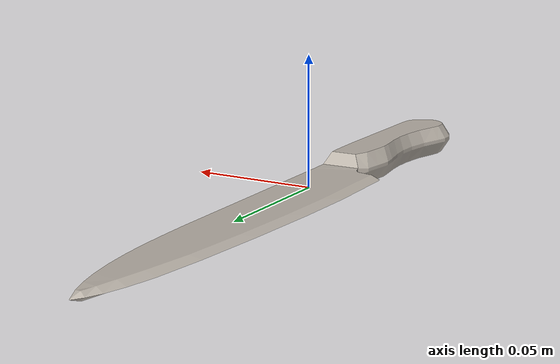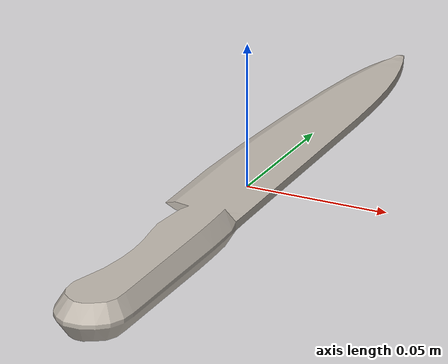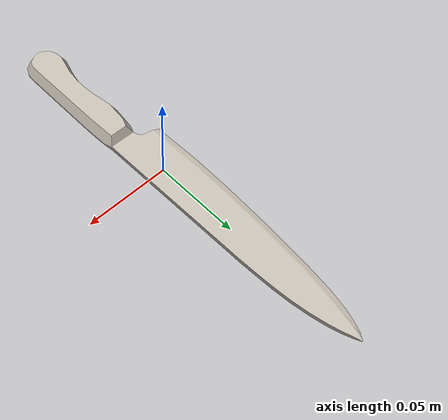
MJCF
<mujoco model="kitchen_knife_16">
    <compiler angle="radian" />
  <default>
    <default class="visual">
      <geom group="2" type="mesh" contype="0" conaffinity="0" />
    </default>
    <default class="collision">
      <geom group="3" type="mesh" solref="0.001 1" solimp="0.998 0.998 0.001" />
    </default>
    <default class="grasppoint">
        <site type="sphere" size="0.01" group="4" rgba="0 0 1 0.2" />
    </default>
  </default>

  <asset>
    <mesh file="visual/model_normalized_0.obj" name="model_normalized_0_vis" scale="0.195 0.195 0.195" refquat="0.6392169592876203 -0.6392169592876203 -0.3023271058954003 -0.3023271058954004" />
    <mesh file="collision/model_normalized_collision_22.obj" name="model_normalized_collision_22._coll" scale="0.195 0.195 0.195" refquat="0.6392169592876203 -0.6392169592876203 -0.3023271058954003 -0.3023271058954004" />
    <mesh file="collision/model_normalized_collision_23.obj" name="model_normalized_collision_23._coll" scale="0.195 0.195 0.195" refquat="0.6392169592876203 -0.6392169592876203 -0.3023271058954003 -0.3023271058954004" />
    <mesh file="collision/model_normalized_collision_21.obj" name="model_normalized_collision_21._coll" scale="0.195 0.195 0.195" refquat="0.6392169592876203 -0.6392169592876203 -0.3023271058954003 -0.3023271058954004" />
    <mesh file="collision/model_normalized_collision_20.obj" name="model_normalized_collision_20._coll" scale="0.195 0.195 0.195" refquat="0.6392169592876203 -0.6392169592876203 -0.3023271058954003 -0.3023271058954004" />
    <mesh file="collision/model_normalized_collision_24.obj" name="model_normalized_collision_24._coll" scale="0.195 0.195 0.195" refquat="0.6392169592876203 -0.6392169592876203 -0.3023271058954003 -0.3023271058954004" />
    <mesh file="collision/model_normalized_collision_30.obj" name="model_normalized_collision_30._coll" scale="0.195 0.195 0.195" refquat="0.6392169592876203 -0.6392169592876203 -0.3023271058954003 -0.3023271058954004" />
    <mesh file="collision/model_normalized_collision_18.obj" name="model_normalized_collision_18._coll" scale="0.195 0.195 0.195" refquat="0.6392169592876203 -0.6392169592876203 -0.3023271058954003 -0.3023271058954004" />
    <mesh file="collision/model_normalized_collision_19.obj" name="model_normalized_collision_19._coll" scale="0.195 0.195 0.195" refquat="0.6392169592876203 -0.6392169592876203 -0.3023271058954003 -0.3023271058954004" />
    <mesh file="collision/model_normalized_collision_31.obj" name="model_normalized_collision_31._coll" scale="0.195 0.195 0.195" refquat="0.6392169592876203 -0.6392169592876203 -0.3023271058954003 -0.3023271058954004" />
    <mesh file="collision/model_normalized_collision_25.obj" name="model_normalized_collision_25._coll" scale="0.195 0.195 0.195" refquat="0.6392169592876203 -0.6392169592876203 -0.3023271058954003 -0.3023271058954004" />
    <mesh file="collision/model_normalized_collision_27.obj" name="model_normalized_collision_27._coll" scale="0.195 0.195 0.195" refquat="0.6392169592876203 -0.6392169592876203 -0.3023271058954003 -0.3023271058954004" />
    <mesh file="collision/model_normalized_collision_26.obj" name="model_normalized_collision_26._coll" scale="0.195 0.195 0.195" refquat="0.6392169592876203 -0.6392169592876203 -0.3023271058954003 -0.3023271058954004" />
    <mesh file="collision/model_normalized_collision_9.obj" name="model_normalized_collision_9._coll" scale="0.195 0.195 0.195" refquat="0.6392169592876203 -0.6392169592876203 -0.3023271058954003 -0.3023271058954004" />
    <mesh file="collision/model_normalized_collision_8.obj" name="model_normalized_collision_8._coll" scale="0.195 0.195 0.195" refquat="0.6392169592876203 -0.6392169592876203 -0.3023271058954003 -0.3023271058954004" />
    <mesh file="collision/model_normalized_collision_6.obj" name="model_normalized_collision_6._coll" scale="0.195 0.195 0.195" refquat="0.6392169592876203 -0.6392169592876203 -0.3023271058954003 -0.3023271058954004" />
    <mesh file="collision/model_normalized_collision_7.obj" name="model_normalized_collision_7._coll" scale="0.195 0.195 0.195" refquat="0.6392169592876203 -0.6392169592876203 -0.3023271058954003 -0.3023271058954004" />
    <mesh file="collision/model_normalized_collision_5.obj" name="model_normalized_collision_5._coll" scale="0.195 0.195 0.195" refquat="0.6392169592876203 -0.6392169592876203 -0.3023271058954003 -0.3023271058954004" />
    <mesh file="collision/model_normalized_collision_4.obj" name="model_normalized_collision_4._coll" scale="0.195 0.195 0.195" refquat="0.6392169592876203 -0.6392169592876203 -0.3023271058954003 -0.3023271058954004" />
    <mesh file="collision/model_normalized_collision_0.obj" name="model_normalized_collision_0._coll" scale="0.195 0.195 0.195" refquat="0.6392169592876203 -0.6392169592876203 -0.3023271058954003 -0.3023271058954004" />
    <mesh file="collision/model_normalized_collision_1.obj" name="model_normalized_collision_1._coll" scale="0.195 0.195 0.195" refquat="0.6392169592876203 -0.6392169592876203 -0.3023271058954003 -0.3023271058954004" />
    <mesh file="collision/model_normalized_collision_3.obj" name="model_normalized_collision_3._coll" scale="0.195 0.195 0.195" refquat="0.6392169592876203 -0.6392169592876203 -0.3023271058954003 -0.3023271058954004" />
    <mesh file="collision/model_normalized_collision_2.obj" name="model_normalized_collision_2._coll" scale="0.195 0.195 0.195" refquat="0.6392169592876203 -0.6392169592876203 -0.3023271058954003 -0.3023271058954004" />
    <mesh file="collision/model_normalized_collision_17.obj" name="model_normalized_collision_17._coll" scale="0.195 0.195 0.195" refquat="0.6392169592876203 -0.6392169592876203 -0.3023271058954003 -0.3023271058954004" />
    <mesh file="collision/model_normalized_collision_16.obj" name="model_normalized_collision_16._coll" scale="0.195 0.195 0.195" refquat="0.6392169592876203 -0.6392169592876203 -0.3023271058954003 -0.3023271058954004" />
    <mesh file="collision/model_normalized_collision_28.obj" name="model_normalized_collision_28._coll" scale="0.195 0.195 0.195" refquat="0.6392169592876203 -0.6392169592876203 -0.3023271058954003 -0.3023271058954004" />
    <mesh file="collision/model_normalized_collision_14.obj" name="model_normalized_collision_14._coll" scale="0.195 0.195 0.195" refquat="0.6392169592876203 -0.6392169592876203 -0.3023271058954003 -0.3023271058954004" />
    <mesh file="collision/model_normalized_collision_15.obj" name="model_normalized_collision_15._coll" scale="0.195 0.195 0.195" refquat="0.6392169592876203 -0.6392169592876203 -0.3023271058954003 -0.3023271058954004" />
    <mesh file="collision/model_normalized_collision_29.obj" name="model_normalized_collision_29._coll" scale="0.195 0.195 0.195" refquat="0.6392169592876203 -0.6392169592876203 -0.3023271058954003 -0.3023271058954004" />
    <mesh file="collision/model_normalized_collision_11.obj" name="model_normalized_collision_11._coll" scale="0.195 0.195 0.195" refquat="0.6392169592876203 -0.6392169592876203 -0.3023271058954003 -0.3023271058954004" />
    <mesh file="collision/model_normalized_collision_10.obj" name="model_normalized_collision_10._coll" scale="0.195 0.195 0.195" refquat="0.6392169592876203 -0.6392169592876203 -0.3023271058954003 -0.3023271058954004" />
    <mesh file="collision/model_normalized_collision_12.obj" name="model_normalized_collision_12._coll" scale="0.195 0.195 0.195" refquat="0.6392169592876203 -0.6392169592876203 -0.3023271058954003 -0.3023271058954004" />
    <mesh file="collision/model_normalized_collision_13.obj" name="model_normalized_collision_13._coll" scale="0.195 0.195 0.195" refquat="0.6392169592876203 -0.6392169592876203 -0.3023271058954003 -0.3023271058954004" />
    <texture type="2d" name="image0" file="visual/image0.png" />
    <material name="Scene_-_Root.026" texture="image0" specular="0.5" shininess="0.25" />
  </asset>
  <worldbody>
      <body>
    <body name="object">

    <geom solimp="0.998 0.998 0.001" solref="0.001 1" density="100" friction="0.95 0.3 0.1" type="mesh" mesh="model_normalized_0_vis" conaffinity="0" contype="0" group="1" material="Scene_-_Root.026" />
        <geom solimp="0.998 0.998 0.001" solref="0.001 1" density="100" friction="0.95 0.3 0.1" type="mesh" mesh="model_normalized_collision_22._coll" group="0" rgba="0.8 0.8 0.8 0.0" />
        <geom solimp="0.998 0.998 0.001" solref="0.001 1" density="100" friction="0.95 0.3 0.1" type="mesh" mesh="model_normalized_collision_23._coll" group="0" rgba="0.8 0.8 0.8 0.0" />
        <geom solimp="0.998 0.998 0.001" solref="0.001 1" density="100" friction="0.95 0.3 0.1" type="mesh" mesh="model_normalized_collision_21._coll" group="0" rgba="0.8 0.8 0.8 0.0" />
        <geom solimp="0.998 0.998 0.001" solref="0.001 1" density="100" friction="0.95 0.3 0.1" type="mesh" mesh="model_normalized_collision_20._coll" group="0" rgba="0.8 0.8 0.8 0.0" />
        <geom solimp="0.998 0.998 0.001" solref="0.001 1" density="100" friction="0.95 0.3 0.1" type="mesh" mesh="model_normalized_collision_24._coll" group="0" rgba="0.8 0.8 0.8 0.0" />
        <geom solimp="0.998 0.998 0.001" solref="0.001 1" density="100" friction="0.95 0.3 0.1" type="mesh" mesh="model_normalized_collision_30._coll" group="0" rgba="0.8 0.8 0.8 0.0" />
        <geom solimp="0.998 0.998 0.001" solref="0.001 1" density="100" friction="0.95 0.3 0.1" type="mesh" mesh="model_normalized_collision_18._coll" group="0" rgba="0.8 0.8 0.8 0.0" />
        <geom solimp="0.998 0.998 0.001" solref="0.001 1" density="100" friction="0.95 0.3 0.1" type="mesh" mesh="model_normalized_collision_19._coll" group="0" rgba="0.8 0.8 0.8 0.0" />
        <geom solimp="0.998 0.998 0.001" solref="0.001 1" density="100" friction="0.95 0.3 0.1" type="mesh" mesh="model_normalized_collision_31._coll" group="0" rgba="0.8 0.8 0.8 0.0" />
        <geom solimp="0.998 0.998 0.001" solref="0.001 1" density="100" friction="0.95 0.3 0.1" type="mesh" mesh="model_normalized_collision_25._coll" group="0" rgba="0.8 0.8 0.8 0.0" />
        <geom solimp="0.998 0.998 0.001" solref="0.001 1" density="100" friction="0.95 0.3 0.1" type="mesh" mesh="model_normalized_collision_27._coll" group="0" rgba="0.8 0.8 0.8 0.0" />
        <geom solimp="0.998 0.998 0.001" solref="0.001 1" density="100" friction="0.95 0.3 0.1" type="mesh" mesh="model_normalized_collision_26._coll" group="0" rgba="0.8 0.8 0.8 0.0" />
        <geom solimp="0.998 0.998 0.001" solref="0.001 1" density="100" friction="0.95 0.3 0.1" type="mesh" mesh="model_normalized_collision_9._coll" group="0" rgba="0.8 0.8 0.8 0.0" />
        <geom solimp="0.998 0.998 0.001" solref="0.001 1" density="100" friction="0.95 0.3 0.1" type="mesh" mesh="model_normalized_collision_8._coll" group="0" rgba="0.8 0.8 0.8 0.0" />
        <geom solimp="0.998 0.998 0.001" solref="0.001 1" density="100" friction="0.95 0.3 0.1" type="mesh" mesh="model_normalized_collision_6._coll" group="0" rgba="0.8 0.8 0.8 0.0" />
        <geom solimp="0.998 0.998 0.001" solref="0.001 1" density="100" friction="0.95 0.3 0.1" type="mesh" mesh="model_normalized_collision_7._coll" group="0" rgba="0.8 0.8 0.8 0.0" />
        <geom solimp="0.998 0.998 0.001" solref="0.001 1" density="100" friction="0.95 0.3 0.1" type="mesh" mesh="model_normalized_collision_5._coll" group="0" rgba="0.8 0.8 0.8 0.0" />
        <geom solimp="0.998 0.998 0.001" solref="0.001 1" density="100" friction="0.95 0.3 0.1" type="mesh" mesh="model_normalized_collision_4._coll" group="0" rgba="0.8 0.8 0.8 0.0" />
        <geom solimp="0.998 0.998 0.001" solref="0.001 1" density="100" friction="0.95 0.3 0.1" type="mesh" mesh="model_normalized_collision_0._coll" group="0" rgba="0.8 0.8 0.8 0.0" />
        <geom solimp="0.998 0.998 0.001" solref="0.001 1" density="100" friction="0.95 0.3 0.1" type="mesh" mesh="model_normalized_collision_1._coll" group="0" rgba="0.8 0.8 0.8 0.0" />
        <geom solimp="0.998 0.998 0.001" solref="0.001 1" density="100" friction="0.95 0.3 0.1" type="mesh" mesh="model_normalized_collision_3._coll" group="0" rgba="0.8 0.8 0.8 0.0" />
        <geom solimp="0.998 0.998 0.001" solref="0.001 1" density="100" friction="0.95 0.3 0.1" type="mesh" mesh="model_normalized_collision_2._coll" group="0" rgba="0.8 0.8 0.8 0.0" />
        <geom solimp="0.998 0.998 0.001" solref="0.001 1" density="100" friction="0.95 0.3 0.1" type="mesh" mesh="model_normalized_collision_17._coll" group="0" rgba="0.8 0.8 0.8 0.0" />
        <geom solimp="0.998 0.998 0.001" solref="0.001 1" density="100" friction="0.95 0.3 0.1" type="mesh" mesh="model_normalized_collision_16._coll" group="0" rgba="0.8 0.8 0.8 0.0" />
        <geom solimp="0.998 0.998 0.001" solref="0.001 1" density="100" friction="0.95 0.3 0.1" type="mesh" mesh="model_normalized_collision_28._coll" group="0" rgba="0.8 0.8 0.8 0.0" />
        <geom solimp="0.998 0.998 0.001" solref="0.001 1" density="100" friction="0.95 0.3 0.1" type="mesh" mesh="model_normalized_collision_14._coll" group="0" rgba="0.8 0.8 0.8 0.0" />
        <geom solimp="0.998 0.998 0.001" solref="0.001 1" density="100" friction="0.95 0.3 0.1" type="mesh" mesh="model_normalized_collision_15._coll" group="0" rgba="0.8 0.8 0.8 0.0" />
        <geom solimp="0.998 0.998 0.001" solref="0.001 1" density="100" friction="0.95 0.3 0.1" type="mesh" mesh="model_normalized_collision_29._coll" group="0" rgba="0.8 0.8 0.8 0.0" />
        <geom solimp="0.998 0.998 0.001" solref="0.001 1" density="100" friction="0.95 0.3 0.1" type="mesh" mesh="model_normalized_collision_11._coll" group="0" rgba="0.8 0.8 0.8 0.0" />
        <geom solimp="0.998 0.998 0.001" solref="0.001 1" density="100" friction="0.95 0.3 0.1" type="mesh" mesh="model_normalized_collision_10._coll" group="0" rgba="0.8 0.8 0.8 0.0" />
        <geom solimp="0.998 0.998 0.001" solref="0.001 1" density="100" friction="0.95 0.3 0.1" type="mesh" mesh="model_normalized_collision_12._coll" group="0" rgba="0.8 0.8 0.8 0.0" />
        <geom solimp="0.998 0.998 0.001" solref="0.001 1" density="100" friction="0.95 0.3 0.1" type="mesh" mesh="model_normalized_collision_13._coll" group="0" rgba="0.8 0.8 0.8 0.0" />
      </body>
           <site rgba="0 0 0 0" size="0.005" pos="-0.002803168665007132 0.0025541255816130806 -0.006507096531272611" name="bottom_site" />
      <site rgba="0 0 0 0" size="0.005" pos="-0.002803168665007132 0.0025541255816130806 0.006507095091683888" name="top_site" />
      <site rgba="0 0 0 0" size="0.005" pos="0.012692345752665219 0.12748377852947979 -7.197943622909431e-10" name="horizontal_radius_site" />
      <site class="grasppoint" pos="0 -0.06 0" />
      </body>
  </worldbody>
</mujoco>
